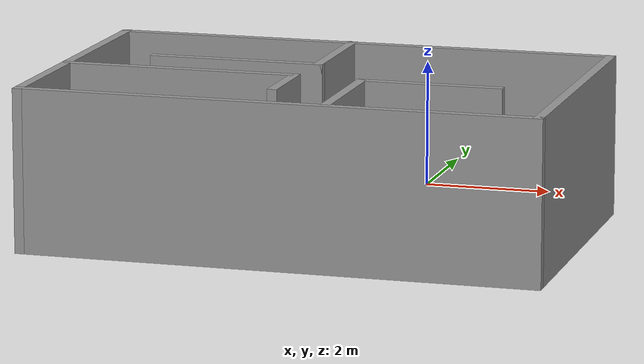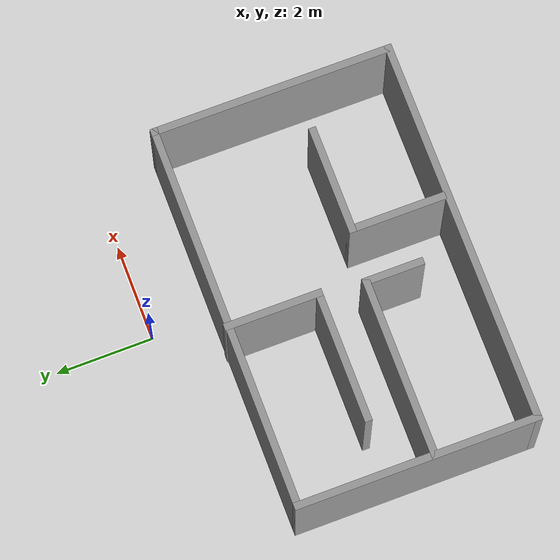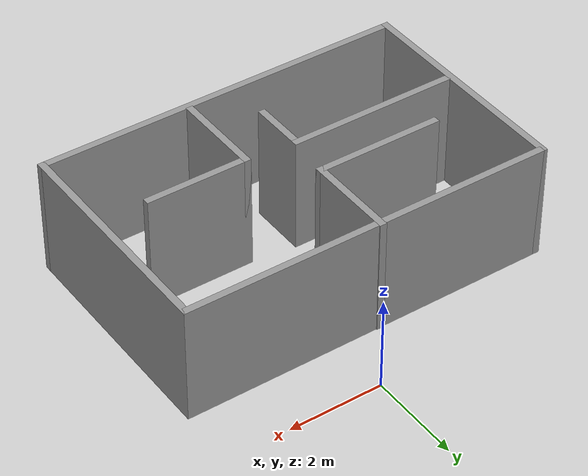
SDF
<?xml version='1.0'?>
<sdf version='1.7'>
  <model name='room'>
    <pose>-0.685 -3.1225 0 0 -0 0</pose>
    <link name='Wall_0'>
      <collision name='Wall_0_Collision'>
        <geometry>
          <box>
            <size>8 0.15 2.5</size>
          </box>
        </geometry>
        <pose>0 0 1.25 0 -0 0</pose>
      </collision>
      <visual name='Wall_0_Visual'>
        <pose>0 0 1.25 0 -0 0</pose>
        <geometry>
          <box>
            <size>8 0.15 2.5</size>
          </box>
        </geometry>
        <material>
          <script>
            <uri>file://media/materials/scripts/gazebo.material</uri>
            <name>Gazebo/Grey</name>
          </script>
          <ambient>1 1 1 1</ambient>
        </material>
        <meta>
          <layer>0</layer>
        </meta>
      </visual>
      <pose>0 1.8025 0 0 -0 0</pose>
    </link>
    <link name='Wall_11'>
      <collision name='Wall_11_Collision'>
        <geometry>
          <box>
            <size>3.75 0.15 2.5</size>
          </box>
        </geometry>
        <pose>0 0 1.25 0 -0 0</pose>
      </collision>
      <visual name='Wall_11_Visual'>
        <pose>0 0 1.25 0 -0 0</pose>
        <geometry>
          <box>
            <size>3.75 0.15 2.5</size>
          </box>
        </geometry>
        <material>
          <script>
            <uri>file://media/materials/scripts/gazebo.material</uri>
            <name>Gazebo/Grey</name>
          </script>
          <ambient>1 1 1 1</ambient>
        </material>
        <meta>
          <layer>0</layer>
        </meta>
      </visual>
      <pose>-2.10957 -0.960159 0 0 -0 0</pose>
    </link>
    <link name='Wall_12'>
      <collision name='Wall_12_Collision'>
        <geometry>
          <box>
            <size>1.25 0.15 2.5</size>
          </box>
        </geometry>
        <pose>0 0 1.25 0 -0 0</pose>
      </collision>
      <visual name='Wall_12_Visual'>
        <pose>0 0 1.25 0 -0 0</pose>
        <geometry>
          <box>
            <size>1.25 0.15 2.5</size>
          </box>
        </geometry>
        <material>
          <script>
            <uri>file://media/materials/scripts/gazebo.material</uri>
            <name>Gazebo/Grey</name>
          </script>
          <ambient>1 1 1 1</ambient>
        </material>
        <meta>
          <layer>0</layer>
        </meta>
      </visual>
      <pose>-0.309568 -1.51016 0 0 -0 -1.5708</pose>
    </link>
    <link name='Wall_14'>
      <collision name='Wall_14_Collision'>
        <geometry>
          <box>
            <size>2 0.15 2.5</size>
          </box>
        </geometry>
        <pose>0 0 1.25 0 -0 0</pose>
      </collision>
      <visual name='Wall_14_Visual'>
        <pose>0 0 1.25 0 -0 0</pose>
        <geometry>
          <box>
            <size>2 0.15 2.5</size>
          </box>
        </geometry>
        <material>
          <script>
            <uri>file://media/materials/scripts/gazebo.material</uri>
            <name>Gazebo/Grey</name>
          </script>
          <ambient>1 1 1 1</ambient>
        </material>
        <meta>
          <layer>0</layer>
        </meta>
      </visual>
      <pose>0.759432 -2.00166 0 0 -0 1.5708</pose>
    </link>
    <link name='Wall_15'>
      <collision name='Wall_15_Collision'>
        <geometry>
          <box>
            <size>2.25 0.15 2.5</size>
          </box>
        </geometry>
        <pose>0 0 1.25 0 -0 0</pose>
      </collision>
      <visual name='Wall_15_Visual'>
        <pose>0 0 1.25 0 -0 0</pose>
        <geometry>
          <box>
            <size>2.25 0.15 2.5</size>
          </box>
        </geometry>
        <material>
          <script>
            <uri>file://media/materials/scripts/gazebo.material</uri>
            <name>Gazebo/Grey</name>
          </script>
          <ambient>1 1 1 1</ambient>
        </material>
        <meta>
          <layer>0</layer>
        </meta>
      </visual>
      <pose>1.80943 -1.07666 0 0 -0 0</pose>
    </link>
    <link name='Wall_3'>
      <collision name='Wall_3_Collision'>
        <geometry>
          <box>
            <size>5 0.15 2.5</size>
          </box>
        </geometry>
        <pose>0 0 1.25 0 -0 0</pose>
      </collision>
      <visual name='Wall_3_Visual'>
        <pose>0 0 1.25 0 -0 0</pose>
        <geometry>
          <box>
            <size>5 0.15 2.5</size>
          </box>
        </geometry>
        <material>
          <script>
            <uri>file://media/materials/scripts/gazebo.material</uri>
            <name>Gazebo/Grey</name>
          </script>
          <ambient>1 1 1 1</ambient>
        </material>
        <meta>
          <layer>0</layer>
        </meta>
      </visual>
      <pose>3.925 -0.6225 0 0 -0 -1.5708</pose>
    </link>
    <link name='Wall_4'>
      <collision name='Wall_4_Collision'>
        <geometry>
          <box>
            <size>8 0.15 2.5</size>
          </box>
        </geometry>
        <pose>0 0 1.25 0 -0 0</pose>
      </collision>
      <visual name='Wall_4_Visual'>
        <pose>0 0 1.25 0 -0 0</pose>
        <geometry>
          <box>
            <size>8 0.15 2.5</size>
          </box>
        </geometry>
        <material>
          <script>
            <uri>file://media/materials/scripts/gazebo.material</uri>
            <name>Gazebo/Grey</name>
          </script>
          <ambient>1 1 1 1</ambient>
        </material>
        <meta>
          <layer>0</layer>
        </meta>
      </visual>
      <pose>0 -3.0475 0 0 -0 3.14159</pose>
    </link>
    <link name='Wall_5'>
      <collision name='Wall_5_Collision'>
        <geometry>
          <box>
            <size>5 0.15 2.5</size>
          </box>
        </geometry>
        <pose>0 0 1.25 0 -0 0</pose>
      </collision>
      <visual name='Wall_5_Visual'>
        <pose>0 0 1.25 0 -0 0</pose>
        <geometry>
          <box>
            <size>5 0.15 2.5</size>
          </box>
        </geometry>
        <material>
          <script>
            <uri>file://media/materials/scripts/gazebo.material</uri>
            <name>Gazebo/Grey</name>
          </script>
          <ambient>1 1 1 1</ambient>
        </material>
        <meta>
          <layer>0</layer>
        </meta>
      </visual>
      <pose>-3.925 -0.6225 0 0 -0 1.5708</pose>
    </link>
    <link name='Wall_8'>
      <collision name='Wall_8_Collision'>
        <geometry>
          <box>
            <size>2 0.15 2.5</size>
          </box>
        </geometry>
        <pose>0 0 1.25 0 -0 0</pose>
      </collision>
      <visual name='Wall_8_Visual'>
        <pose>0 0 1.25 0 -0 0</pose>
        <geometry>
          <box>
            <size>2 0.15 2.5</size>
          </box>
        </geometry>
        <material>
          <script>
            <uri>file://media/materials/scripts/gazebo.material</uri>
            <name>Gazebo/Grey</name>
          </script>
          <ambient>1 1 1 1</ambient>
        </material>
        <meta>
          <layer>0</layer>
        </meta>
      </visual>
      <pose>-0.206568 0.897841 0 0 -0 -1.5708</pose>
    </link>
    <link name='Wall_9'>
      <collision name='Wall_9_Collision'>
        <geometry>
          <box>
            <size>2.75 0.15 2.5</size>
          </box>
        </geometry>
        <pose>0 0 1.25 0 -0 0</pose>
      </collision>
      <visual name='Wall_9_Visual'>
        <pose>0 0 1.25 0 -0 0</pose>
        <geometry>
          <box>
            <size>2.75 0.15 2.5</size>
          </box>
        </geometry>
        <material>
          <script>
            <uri>file://media/materials/scripts/gazebo.material</uri>
            <name>Gazebo/Grey</name>
          </script>
          <ambient>1 1 1 1</ambient>
        </material>
        <meta>
          <layer>0</layer>
        </meta>
      </visual>
      <pose>-1.50657 -0.027158 0 0 -0 3.14159</pose>
    </link>
    <static>1</static>
  </model>
</sdf>
